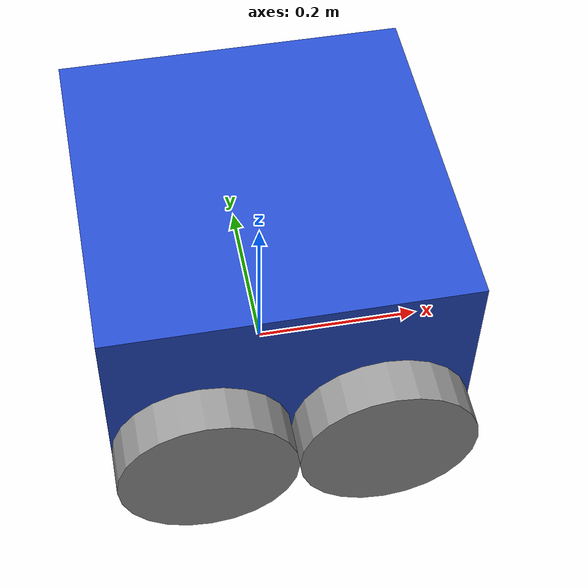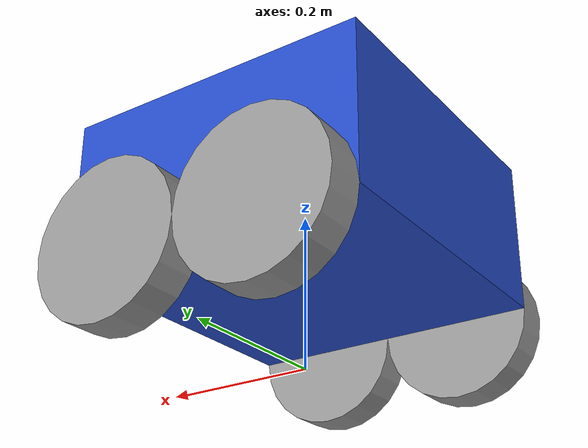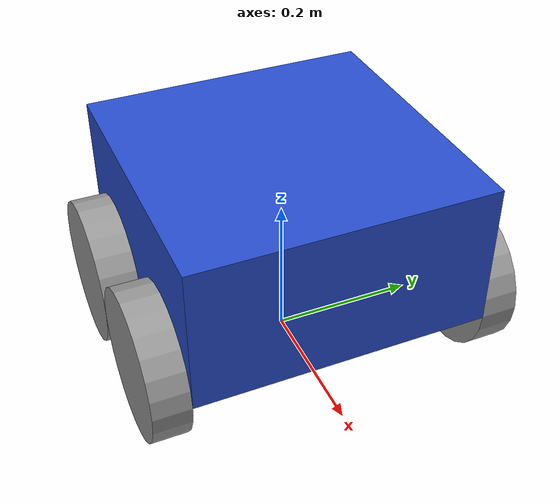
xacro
<?xml version="1.0"?>
<robot xmlns:xacro="https://www.ros.org/wiki/xacro">
  <xacro:property name="base_length" value="0.4"/>
  <xacro:property name="base_width" value="0.4"/>
  <xacro:property name="base_height" value="0.2"/>
  <xacro:property name="wheel_radius" value="0.1"/>
  <xacro:property name="wheel_length" value="0.05"/>

  <link name="base_footprint" />
  <link name="base_link">
    <visual>
      <geometry>
        <box size="${base_length} ${base_width} ${base_height}"/>
      </geometry>
      <origin xyz="0 0 ${base_height/2.0}" rpy="0 0 0"/>
      <material name="blue"/>
    </visual>
    <collision>
      <geometry>
        <box size="${base_length} ${base_width} ${base_height}"/>
      </geometry>
      <origin xyz="0 0 ${base_height/2.0}" rpy="0 0 0"/>
    </collision>
    <xacro:box_inertia m="5.0" l="${base_length}" w="${base_width}" h="${base_height}"
                       xyz="0 0 ${base_height/2.0}" rpy="0 0 0" />
  </link>

  <xacro:macro name="wheel_link" params="prefix">
    <link name="${prefix}_wheel_link">
    <visual>
      <geometry>
        <cylinder radius="${wheel_radius}" length="${wheel_length}"/>
      </geometry>
      <origin xyz="0 0 0" rpy="0 0 0"/>
      <material name="grey"/>
    </visual>
    <collision>
      <geometry>
        <cylinder radius="${wheel_radius}" length="${wheel_length}"/>
      </geometry>
      <origin xyz="0 0 0" rpy="0 0 0"/>
    </collision>
    <xacro:wheel_inertia m="1.0" l="${wheel_length}" r="${wheel_radius}"
                       xyz="0 0 0" rpy="0 0 0" />
  </link>
  </xacro:macro>
  <xacro:wheel_link prefix="right" />
  <xacro:wheel_link prefix="left" />
  <xacro:wheel_link prefix="front_right" />
  <xacro:wheel_link prefix="front_left" />

  <joint name="base_joint" type="fixed">
    <parent link="base_footprint"/>
    <child link="base_link"/>
    <origin xyz="0 0 0.1" rpy="0 0 0"/>
  </joint>

  <joint name="base_right_wheel_joint" type="fixed">
    <parent link="base_link"/>
    <child link="right_wheel_link"/>
    <origin xyz="${base_length / 4.0} ${(base_width + wheel_length)/2.0} 0" rpy="${-pi / 2.0} 0 0"/>
    <axis xyz="0 0 1"/>
  </joint>
  <joint name="base_left_wheel_joint" type="fixed">
    <parent link="base_link"/>
    <child link="left_wheel_link"/>
    <origin xyz="${base_length / 4.0} ${-(base_width + wheel_length)/2.0} 0" rpy="${-pi / 2.0} 0 0"/>
    <axis xyz="0 0 1"/>
  </joint>
  <joint name="base_rightwheel_joint" type="continuous">
    <parent link="base_link"/>
    <child link="front_right_wheel_link"/>
    <origin xyz="${-base_length / 4.0} ${(base_width + wheel_length)/2.0} 0" rpy="${-pi / 2.0} 0 0"/>
    <axis xyz="0 0 1"/>
  </joint>
  <joint name="base_leftwheel_joint" type="continuous">
    <parent link="base_link"/>
    <child link="front_left_wheel_link"/>
    <origin xyz="${-base_length / 4.0} ${-(base_width + wheel_length)/2.0} 0" rpy="${-pi / 2.0} 0 0"/>
    <axis xyz="0 0 1"/>
  </joint>

</robot>
